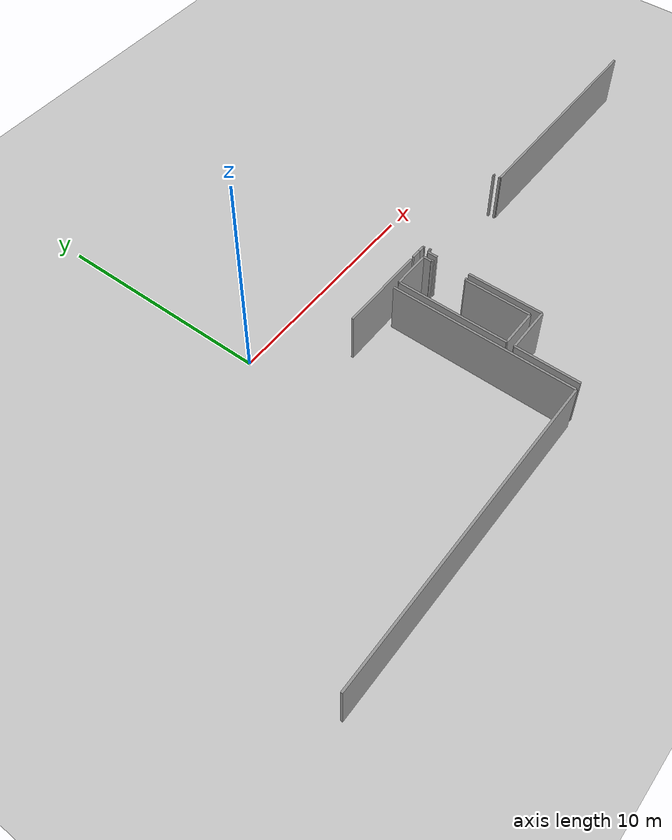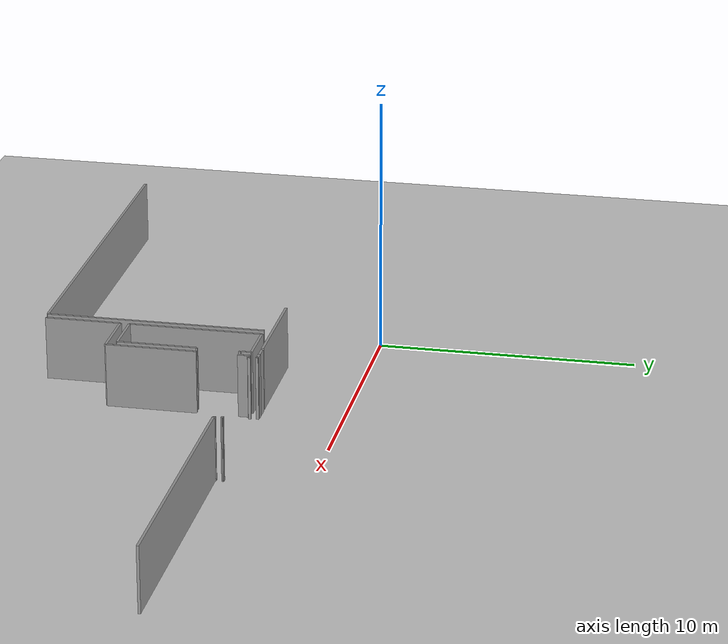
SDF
<sdf version="1.6">
 <world name="default">
  <model name="ground_plane">
   <static>1</static>
   <link name="link">
    <collision name="collision">
     <geometry><plane><normal>0 0 1</normal><size>100 100</size></plane></geometry>
     <surface><friction><ode><mu>100</mu><mu2>50</mu2></ode></friction></surface>
    </collision>
    <visual name="visual">
     <cast_shadows>0</cast_shadows>
     <geometry><plane><normal>0 0 1</normal><size>100 100</size></plane></geometry>
     <material>
      <script><uri>file://media/materials/scripts/gazebo.material</uri><name>Gazebo/Grey</name></script>
     </material>
    </visual>
   </link>
  </model>
  <model name="0510030940_A_40_1_104">
   <static>1</static>
   <link name="Wall_36">
    <collision name="Wall_36_Collision">
     <geometry><box><size>4.05014231981 0.1 2.5</size></box></geometry>
     <pose>2.02507115991 0 1.25 0 0 0</pose>
    </collision>
    <visual name="Wall_36_Visual">
     <pose>2.02507115991 0 1.25 0 0 0</pose>
     <geometry><box><size>4.05014231981 0.1 2.5</size></box></geometry>
     <material>
      <script><uri>file://media/materials/scripts/gazebo.material</uri><name>Gazebo/Grey</name></script>
      <ambient>1 1 1 1</ambient>
     </material>
    </visual>
    <pose>30.6189641151 -15.1343143235 0 0 0 3.14159265359</pose>
   </link>
   <link name="Wall_58">
    <collision name="Wall_58_Collision">
     <geometry><box><size>8.4637084477 0.1 2.5</size></box></geometry>
     <pose>4.23185422385 0 1.25 0 0 0</pose>
    </collision>
    <visual name="Wall_58_Visual">
     <pose>4.23185422385 0 1.25 0 0 0</pose>
     <geometry><box><size>8.4637084477 0.1 2.5</size></box></geometry>
     <material>
      <script><uri>file://media/materials/scripts/gazebo.material</uri><name>Gazebo/Grey</name></script>
      <ambient>1 1 1 1</ambient>
     </material>
    </visual>
    <pose>28.9280268375 -15.4652078886 0 0 0 -1.57079632679</pose>
   </link>
   <link name="Wall_59">
    <collision name="Wall_59_Collision">
     <geometry><box><size>14.6010016581 0.1 2.5</size></box></geometry>
     <pose>7.30050082905 0 1.25 0 0 0</pose>
    </collision>
    <visual name="Wall_59_Visual">
     <pose>7.30050082905 0 1.25 0 0 0</pose>
     <geometry><box><size>14.6010016581 0.1 2.5</size></box></geometry>
     <material>
      <script><uri>file://media/materials/scripts/gazebo.material</uri><name>Gazebo/Grey</name></script>
      <ambient>1 1 1 1</ambient>
     </material>
    </visual>
    <pose>28.9280268375 -23.9289163363 0 0 0 3.140731065</pose>
   </link>
   <link name="Wall_74">
    <collision name="Wall_74_Collision">
     <geometry><box><size>0.439412422487 0.1 2.5</size></box></geometry>
     <pose>0.219706211243 0 1.25 0 0 0</pose>
    </collision>
    <visual name="Wall_74_Visual">
     <pose>0.219706211243 0 1.25 0 0 0</pose>
     <geometry><box><size>0.439412422487 0.1 2.5</size></box></geometry>
     <material>
      <script><uri>file://media/materials/scripts/gazebo.material</uri><name>Gazebo/Grey</name></script>
      <ambient>1 1 1 1</ambient>
     </material>
    </visual>
    <pose>31.2120056928 -15.1251651926 0 0 0 3.14159265359</pose>
   </link>
   <link name="Wall_86">
    <collision name="Wall_86_Collision">
     <geometry><box><size>0.0354528819762 0.1 2.5</size></box></geometry>
     <pose>0.0177264409881 0 1.25 0 0 0</pose>
    </collision>
    <visual name="Wall_86_Visual">
     <pose>0.0177264409881 0 1.25 0 0 0</pose>
     <geometry><box><size>0.0354528819762 0.1 2.5</size></box></geometry>
     <material>
      <script><uri>file://media/materials/scripts/gazebo.material</uri><name>Gazebo/Grey</name></script>
      <ambient>1 1 1 1</ambient>
     </material>
    </visual>
    <pose>37.0506760191 -15.1124580665 0 0 0 -1.57079632679</pose>
   </link>
   <link name="Wall_87">
    <collision name="Wall_87_Collision">
     <geometry><box><size>0.0983531564501 0.1 2.5</size></box></geometry>
     <pose>0.0491765782251 0 1.25 0 0 0</pose>
    </collision>
    <visual name="Wall_87_Visual">
     <pose>0.0491765782251 0 1.25 0 0 0</pose>
     <geometry><box><size>0.0983531564501 0.1 2.5</size></box></geometry>
     <material>
      <script><uri>file://media/materials/scripts/gazebo.material</uri><name>Gazebo/Grey</name></script>
      <ambient>1 1 1 1</ambient>
     </material>
    </visual>
    <pose>37.0506760191 -15.1479109485 0 0 0 3.14159265359</pose>
   </link>
   <link name="Wall_88">
    <collision name="Wall_88_Collision">
     <geometry><box><size>0.0629002744739 0.1 2.5</size></box></geometry>
     <pose>0.031450137237 0 1.25 0 0 0</pose>
    </collision>
    <visual name="Wall_88_Visual">
     <pose>0.031450137237 0 1.25 0 0 0</pose>
     <geometry><box><size>0.0629002744739 0.1 2.5</size></box></geometry>
     <material>
      <script><uri>file://media/materials/scripts/gazebo.material</uri><name>Gazebo/Grey</name></script>
      <ambient>1 1 1 1</ambient>
     </material>
    </visual>
    <pose>31.5498881773 -15.1479109485 0 0 0 3.14159265359</pose>
   </link>
   <link name="Wall_89">
    <collision name="Wall_89_Collision">
     <geometry><box><size>0.0218562569889 0.1 2.5</size></box></geometry>
     <pose>0.0109281284945 0 1.25 0 0 0</pose>
    </collision>
    <visual name="Wall_89_Visual">
     <pose>0.0109281284945 0 1.25 0 0 0</pose>
     <geometry><box><size>0.0218562569889 0.1 2.5</size></box></geometry>
     <material>
      <script><uri>file://media/materials/scripts/gazebo.material</uri><name>Gazebo/Grey</name></script>
      <ambient>1 1 1 1</ambient>
     </material>
    </visual>
    <pose>31.4869879028 -15.1479109485 0 0 0 1.57079632679</pose>
   </link>
   <link name="Wall_90">
    <collision name="Wall_90_Collision">
     <geometry><box><size>0.274983648673 0.1 2.5</size></box></geometry>
     <pose>0.137491824336 0 1.25 0 0 0</pose>
    </collision>
    <visual name="Wall_90_Visual">
     <pose>0.137491824336 0 1.25 0 0 0</pose>
     <geometry><box><size>0.274983648673 0.1 2.5</size></box></geometry>
     <material>
      <script><uri>file://media/materials/scripts/gazebo.material</uri><name>Gazebo/Grey</name></script>
      <ambient>1 1 1 1</ambient>
     </material>
    </visual>
    <pose>31.4869879028 -15.1260546915 0 0 0 3.13835791441</pose>
   </link>
   <link name="Wall_100">
    <collision name="Wall_100_Collision">
     <geometry><box><size>2.93852292366 0.1 2.5</size></box></geometry>
     <pose>1.46926146183 0 1.25 0 0 0</pose>
    </collision>
    <visual name="Wall_100_Visual">
     <pose>1.46926146183 0 1.25 0 0 0</pose>
     <geometry><box><size>2.93852292366 0.1 2.5</size></box></geometry>
     <material>
      <script><uri>file://media/materials/scripts/gazebo.material</uri><name>Gazebo/Grey</name></script>
      <ambient>1 1 1 1</ambient>
     </material>
    </visual>
    <pose>29.2896716479 -23.9163362814 0 0 0 1.57079632679</pose>
   </link>
   <link name="Wall_101">
    <collision name="Wall_101_Collision">
     <geometry><box><size>2.09222832164 0.1 2.5</size></box></geometry>
     <pose>1.04611416082 0 1.25 0 0 0</pose>
    </collision>
    <visual name="Wall_101_Visual">
     <pose>1.04611416082 0 1.25 0 0 0</pose>
     <geometry><box><size>2.09222832164 0.1 2.5</size></box></geometry>
     <material>
      <script><uri>file://media/materials/scripts/gazebo.material</uri><name>Gazebo/Grey</name></script>
      <ambient>1 1 1 1</ambient>
     </material>
    </visual>
    <pose>29.2896716479 -20.9778133577 0 0 0 0.0</pose>
   </link>
   <link name="Wall_102">
    <collision name="Wall_102_Collision">
     <geometry><box><size>3.48569177595 0.1 2.5</size></box></geometry>
     <pose>1.74284588797 0 1.25 0 0 0</pose>
    </collision>
    <visual name="Wall_102_Visual">
     <pose>1.74284588797 0 1.25 0 0 0</pose>
     <geometry><box><size>3.48569177595 0.1 2.5</size></box></geometry>
     <material>
      <script><uri>file://media/materials/scripts/gazebo.material</uri><name>Gazebo/Grey</name></script>
      <ambient>1 1 1 1</ambient>
     </material>
    </visual>
    <pose>31.3818999695 -20.9778133577 0 0 0 1.57079632679</pose>
   </link>
   <link name="Wall_103">
    <collision name="Wall_103_Collision">
     <geometry><box><size>0.44538477178 0.1 2.5</size></box></geometry>
     <pose>0.22269238589 0 1.25 0 0 0</pose>
    </collision>
    <visual name="Wall_103_Visual">
     <pose>0.22269238589 0 1.25 0 0 0</pose>
     <geometry><box><size>0.44538477178 0.1 2.5</size></box></geometry>
     <material>
      <script><uri>file://media/materials/scripts/gazebo.material</uri><name>Gazebo/Grey</name></script>
      <ambient>1 1 1 1</ambient>
     </material>
    </visual>
    <pose>31.3818999695 -15.9122445868 0 0 0 1.57079632679</pose>
   </link>
   <link name="Wall_104">
    <collision name="Wall_104_Collision">
     <geometry><box><size>0.13329775338 0.1 2.5</size></box></geometry>
     <pose>0.06664887669 0 1.25 0 0 0</pose>
    </collision>
    <visual name="Wall_104_Visual">
     <pose>0.06664887669 0 1.25 0 0 0</pose>
     <geometry><box><size>0.13329775338 0.1 2.5</size></box></geometry>
     <material>
      <script><uri>file://media/materials/scripts/gazebo.material</uri><name>Gazebo/Grey</name></script>
      <ambient>1 1 1 1</ambient>
     </material>
    </visual>
    <pose>31.3818999695 -15.466859815 0 0 0 0.0</pose>
   </link>
   <link name="Wall_105">
    <collision name="Wall_105_Collision">
     <geometry><box><size>0.034055098099 0.1 2.5</size></box></geometry>
     <pose>0.0170275490495 0 1.25 0 0 0</pose>
    </collision>
    <visual name="Wall_105_Visual">
     <pose>0.0170275490495 0 1.25 0 0 0</pose>
     <geometry><box><size>0.034055098099 0.1 2.5</size></box></geometry>
     <material>
      <script><uri>file://media/materials/scripts/gazebo.material</uri><name>Gazebo/Grey</name></script>
      <ambient>1 1 1 1</ambient>
     </material>
    </visual>
    <pose>31.5151977229 -15.466859815 0 0 0 1.57079632679</pose>
   </link>
   <link name="Wall_106">
    <collision name="Wall_106_Collision">
     <geometry><box><size>0.0898393819254 0.1 2.5</size></box></geometry>
     <pose>0.0449196909627 0 1.25 0 0 0</pose>
    </collision>
    <visual name="Wall_106_Visual">
     <pose>0.0449196909627 0 1.25 0 0 0</pose>
     <geometry><box><size>0.0898393819254 0.1 2.5</size></box></geometry>
     <material>
      <script><uri>file://media/materials/scripts/gazebo.material</uri><name>Gazebo/Grey</name></script>
      <ambient>1 1 1 1</ambient>
     </material>
    </visual>
    <pose>31.5151977229 -15.4328047169 0 0 0 0.0</pose>
   </link>
   <link name="Wall_107">
    <collision name="Wall_107_Collision">
     <geometry><box><size>0.0700162651215 0.1 2.5</size></box></geometry>
     <pose>0.0350081325607 0 1.25 0 0 0</pose>
    </collision>
    <visual name="Wall_107_Visual">
     <pose>0.0350081325607 0 1.25 0 0 0</pose>
     <geometry><box><size>0.0700162651215 0.1 2.5</size></box></geometry>
     <material>
      <script><uri>file://media/materials/scripts/gazebo.material</uri><name>Gazebo/Grey</name></script>
      <ambient>1 1 1 1</ambient>
     </material>
    </visual>
    <pose>36.9837094643 -15.4328047169 0 0 0 0.0</pose>
   </link>
   <link name="Wall_109">
    <collision name="Wall_109_Collision">
     <geometry><box><size>10.5034563383 0.1 2.5</size></box></geometry>
     <pose>5.25172816916 0 1.25 0 0 0</pose>
    </collision>
    <visual name="Wall_109_Visual">
     <pose>5.25172816916 0 1.25 0 0 0</pose>
     <geometry><box><size>10.5034563383 0.1 2.5</size></box></geometry>
     <material>
      <script><uri>file://media/materials/scripts/gazebo.material</uri><name>Gazebo/Grey</name></script>
      <ambient>1 1 1 1</ambient>
     </material>
    </visual>
    <pose>37.0537257294 -15.461522822 0 0 0 0.0</pose>
   </link>
   <link name="Wall_119">
    <collision name="Wall_119_Collision">
     <geometry><box><size>5.15159601505 0.1 2.5</size></box></geometry>
     <pose>2.57579800752 0 1.25 0 0 0</pose>
    </collision>
    <visual name="Wall_119_Visual">
     <pose>2.57579800752 0 1.25 0 0 0</pose>
     <geometry><box><size>5.15159601505 0.1 2.5</size></box></geometry>
     <material>
      <script><uri>file://media/materials/scripts/gazebo.material</uri><name>Gazebo/Grey</name></script>
      <ambient>1 1 1 1</ambient>
     </material>
    </visual>
    <pose>29.2856053675 -20.6187099726 0 0 0 1.57079632679</pose>
   </link>
   <link name="Wall_120">
    <collision name="Wall_120_Collision">
     <geometry><box><size>1.7654010369 0.1 2.5</size></box></geometry>
     <pose>0.882700518451 0 1.25 0 0 0</pose>
    </collision>
    <visual name="Wall_120_Visual">
     <pose>0.882700518451 0 1.25 0 0 0</pose>
     <geometry><box><size>1.7654010369 0.1 2.5</size></box></geometry>
     <material>
      <script><uri>file://media/materials/scripts/gazebo.material</uri><name>Gazebo/Grey</name></script>
      <ambient>1 1 1 1</ambient>
     </material>
    </visual>
    <pose>29.2856053675 -15.4671139575 0 0 0 0.0</pose>
   </link>
   <link name="Wall_121">
    <collision name="Wall_121_Collision">
     <geometry><box><size>0.378037003151 0.1 2.5</size></box></geometry>
     <pose>0.189018501576 0 1.25 0 0 0</pose>
    </collision>
    <visual name="Wall_121_Visual">
     <pose>0.189018501576 0 1.25 0 0 0</pose>
     <geometry><box><size>0.378037003151 0.1 2.5</size></box></geometry>
     <material>
      <script><uri>file://media/materials/scripts/gazebo.material</uri><name>Gazebo/Grey</name></script>
      <ambient>1 1 1 1</ambient>
     </material>
    </visual>
    <pose>31.0510064044 -15.4671139575 0 0 0 -1.57079632679</pose>
   </link>
   <link name="Wall_122">
    <collision name="Wall_122_Collision">
     <geometry><box><size>0.0373589508997 0.1 2.5</size></box></geometry>
     <pose>0.0186794754498 0 1.25 0 0 0</pose>
    </collision>
    <visual name="Wall_122_Visual">
     <pose>0.0186794754498 0 1.25 0 0 0</pose>
     <geometry><box><size>0.0373589508997 0.1 2.5</size></box></geometry>
     <material>
      <script><uri>file://media/materials/scripts/gazebo.material</uri><name>Gazebo/Grey</name></script>
      <ambient>1 1 1 1</ambient>
     </material>
    </visual>
    <pose>31.0510064044 -15.8451509607 0 0 0 0.0</pose>
   </link>
   <link name="Wall_123">
    <collision name="Wall_123_Collision">
     <geometry><box><size>0.0996238690658 0.1 2.5</size></box></geometry>
     <pose>0.0498119345329 0 1.25 0 0 0</pose>
    </collision>
    <visual name="Wall_123_Visual">
     <pose>0.0498119345329 0 1.25 0 0 0</pose>
     <geometry><box><size>0.0996238690658 0.1 2.5</size></box></geometry>
     <material>
      <script><uri>file://media/materials/scripts/gazebo.material</uri><name>Gazebo/Grey</name></script>
      <ambient>1 1 1 1</ambient>
     </material>
    </visual>
    <pose>31.0883653553 -15.8451509607 0 0 0 -1.57079632679</pose>
   </link>
   <link name="Wall_124">
    <collision name="Wall_124_Collision">
     <geometry><box><size>0.0738284029684 0.1 2.5</size></box></geometry>
     <pose>0.0369142014842 0 1.25 0 0 0</pose>
    </collision>
    <visual name="Wall_124_Visual">
     <pose>0.0369142014842 0 1.25 0 0 0</pose>
     <geometry><box><size>0.0738284029684 0.1 2.5</size></box></geometry>
     <material>
      <script><uri>file://media/materials/scripts/gazebo.material</uri><name>Gazebo/Grey</name></script>
      <ambient>1 1 1 1</ambient>
     </material>
    </visual>
    <pose>31.0883653553 -17.5132154112 0 0 0 -1.57079632679</pose>
   </link>
   <link name="Wall_125">
    <collision name="Wall_125_Collision">
     <geometry><box><size>0.0493036494866 0.1 2.5</size></box></geometry>
     <pose>0.0246518247433 0 1.25 0 0 0</pose>
    </collision>
    <visual name="Wall_125_Visual">
     <pose>0.0246518247433 0 1.25 0 0 0</pose>
     <geometry><box><size>0.0493036494866 0.1 2.5</size></box></geometry>
     <material>
      <script><uri>file://media/materials/scripts/gazebo.material</uri><name>Gazebo/Grey</name></script>
      <ambient>1 1 1 1</ambient>
     </material>
    </visual>
    <pose>31.0883653553 -17.5870438142 0 0 0 3.14159265359</pose>
   </link>
   <link name="Wall_126">
    <collision name="Wall_126_Collision">
     <geometry><box><size>3.0378926502 0.1 2.5</size></box></geometry>
     <pose>1.5189463251 0 1.25 0 0 0</pose>
    </collision>
    <visual name="Wall_126_Visual">
     <pose>1.5189463251 0 1.25 0 0 0</pose>
     <geometry><box><size>3.0378926502 0.1 2.5</size></box></geometry>
     <material>
      <script><uri>file://media/materials/scripts/gazebo.material</uri><name>Gazebo/Grey</name></script>
      <ambient>1 1 1 1</ambient>
     </material>
    </visual>
    <pose>31.0390617058 -17.5870438142 0 0 0 -1.57079632679</pose>
   </link>
   <link name="Wall_127">
    <collision name="Wall_127_Collision">
     <geometry><box><size>1.75346739336 0.1 2.5</size></box></geometry>
     <pose>0.87673369668 0 1.25 0 0 0</pose>
    </collision>
    <visual name="Wall_127_Visual">
     <pose>0.87673369668 0 1.25 0 0 0</pose>
     <geometry><box><size>1.75346739336 0.1 2.5</size></box></geometry>
     <material>
      <script><uri>file://media/materials/scripts/gazebo.material</uri><name>Gazebo/Grey</name></script>
      <ambient>1 1 1 1</ambient>
     </material>
    </visual>
    <pose>31.0390617058 -20.6249364644 0 0 0 3.13804168656</pose>
   </link>
   <pose>-23.75 11.9814577615 0 0 0 0</pose>
  </model>
 </world>
</sdf>
